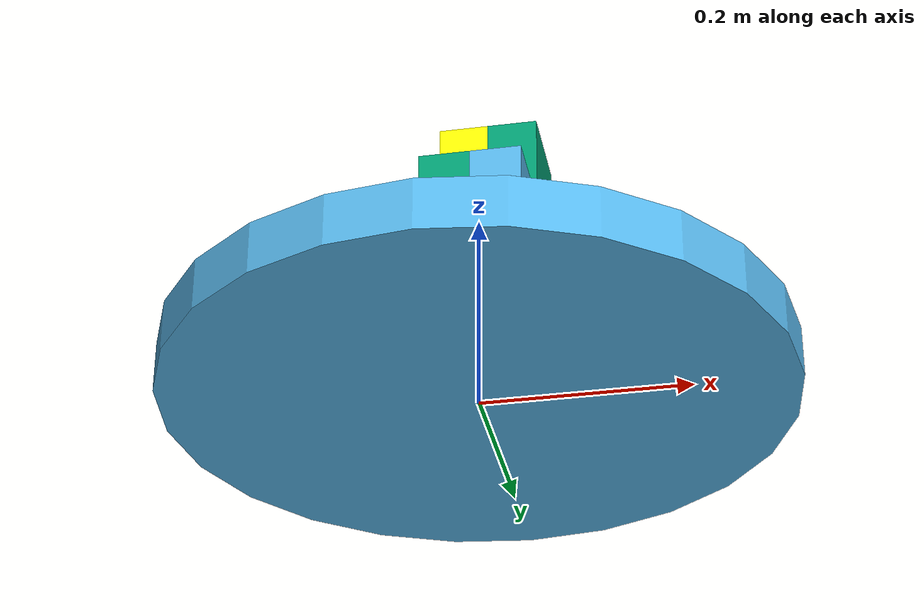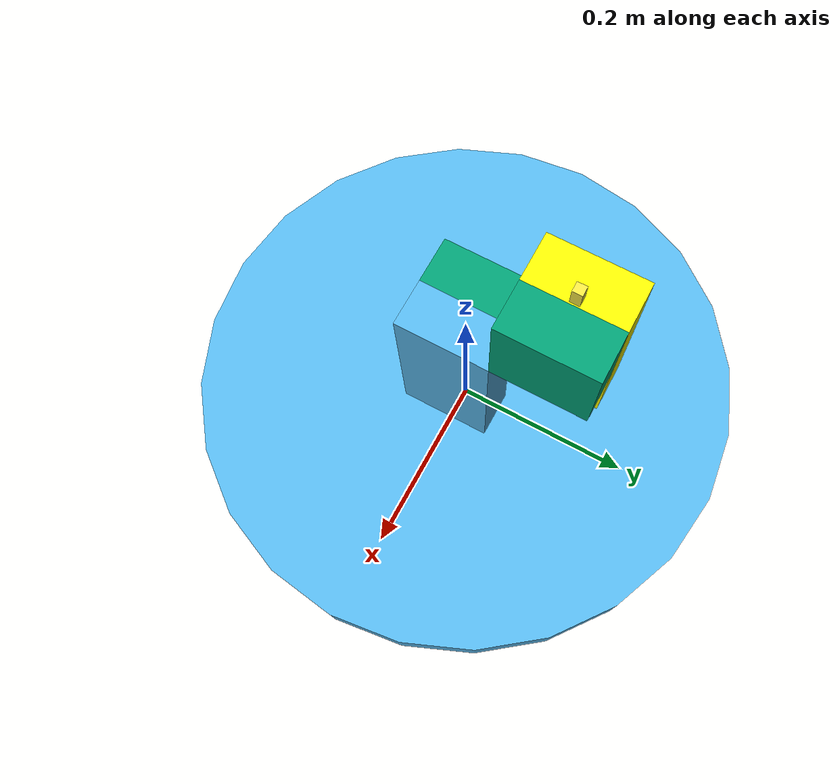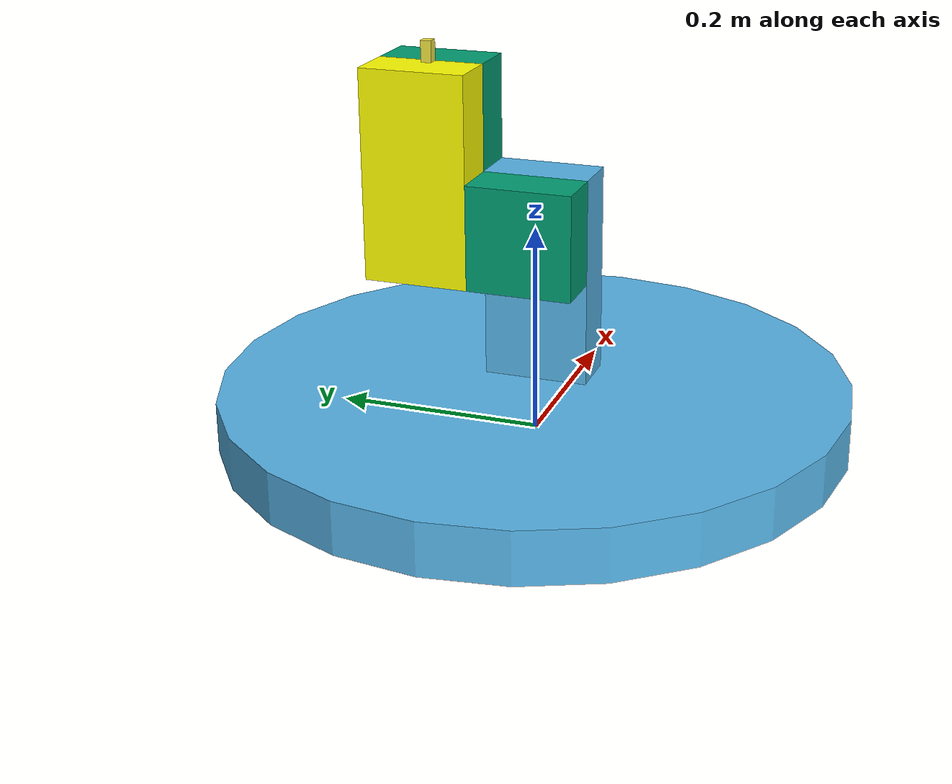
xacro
<?xml version="1.0" encoding="utf-8"?>

<robot xmlns:xacro="http://ros.org/wiki/xacro" name="base_model">

    <xacro:include filename="$(find macro_tutorial)/src/model/model.urdf.xacro"/>

    <xacro:rotating_base/>
</robot>

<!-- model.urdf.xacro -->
<robot xmlns:xacro="http://ros.org/wiki/xacro" name="skeleton">

  <xacro:macro name="rotating_base" >

    <link name="base_frame">
        <origin xyz="0.0 0.0 0.0" rpy="0.0 0.0 0.0"/>
    </link>

    <link name="base_link">
        <origin xyz="0.0 0.0 0.0" rpy="0.0 0.0 0.0"/>
        <visual>
        <origin rpy="0 0 0" xyz="0 0 0.025"/>
        <geometry>
            <cylinder length="0.05" radius="0.3"/>
        </geometry>
        </visual>
        <visual>
        <origin rpy="0 0 0" xyz="0.025 0 0.15"/>
        <geometry>
            <box size="0.05 0.1 0.2"/>
        </geometry>
        </visual>
        <collision>
        <geometry>
            <cylinder length="0.05" radius="0.025"/>
        <origin rpy="0 0 0" xyz="0 0 0"/>
        </geometry>
        </collision>
        <inertial>
        <mass value="0.1"/>
        <inertia ixx="0.067" ixy="0.0" ixz="0.0" iyy="0.067" iyz="0.0" izz="0.035"/>
        </inertial>

    </link>

    <joint name="mounting" type="fixed">
        <origin xyz="0.0 0.0 0.0" rpy="0.0 0.0 0.0"/>
        <parent link="base_frame"/>
        <child link="base_link"/>

    </joint>

    <link name="inter_1">
        <origin xyz="0.0 0.0 0.0" rpy="0.0 0.0 0.0"/>

        <visual>
        <origin rpy="0 0 0" xyz="-0.025 0.1 0"/>
        <geometry>
                <box size="0.05 0.1 0.2"/>
        </geometry>
        <material name="yellow">
            <color rgba="1 1 0 1"/>
        </material>
        </visual>

        <visual>
            <origin rpy="0 0 0" xyz="-0.0250 0 -0.05"/>
            <geometry>
                <box size="0.05 0.1 0.1"/>
            </geometry>
        </visual>

        <visual>
            <origin rpy="0 0 0" xyz="0.025 0.1 0.05"/>
            <geometry>
                <box size = "0.05 0.1 0.1"/>
            </geometry>
        </visual>
        <inertial>
            <mass value="0.1"/>
            <inertia ixx="0.067" ixy="0.0" ixz="0.0" iyy="0.067" iyz="0.0" izz="0.035"/>
        </inertial>
    </link>

	<link name="inter_2">
        <origin xyz="0.0 0.0 0.0" rpy="0.0 0.0 0.0"/>

        <visual>
        <origin rpy="0 0 0" xyz="-0.025 0.1 0"/>
        <geometry>
                <box size="0.01 0.01 0.01"/>
        </geometry>
        <material name="yellow">
            <color rgba="1 0 0 1"/>
        </material>
        </visual>

        <visual>
            <origin rpy="0 0 0" xyz="-0.0250 0 -0.05"/>
            <geometry>
                <box size="0.01 0.01 0.01"/>
            </geometry>
        </visual>

        <visual>
            <origin rpy="0 0 0" xyz="-0.0065 0.1 0.1"/>
            <geometry>
                <box size = "0.01 0.01 0.02"/>
            </geometry>
        </visual>
        <inertial>
            <mass value="0.1"/>
            <inertia ixx="0.067" ixy="0.0" ixz="0.0" iyy="0.067" iyz="0.0" izz="0.035"/>
        </inertial>
    </link>

    <joint name="rev_1" type="revolute">
        <origin xyz="0 0 0.25" rpy="0 0 0 "/>
        <parent link= "base_link"/>
        <child link = "inter_1"/>
        <axis xyz="1 0 0"/>
        <limit effort="30" velocity="1.0" lower="-0.45" upper="0.45" />
    </joint>

	<joint name="rev_2" type="revolute">
        <origin xyz="0 0 0.01" rpy="0 0 0 "/>
        <parent link= "inter_1"/>
        <child link = "inter_2"/>
        <axis xyz="0 1 0"/>
        <limit effort="30" velocity="1.0" lower="-0.45" upper="0.45" />
    </joint>

  </xacro:macro>

</robot>
